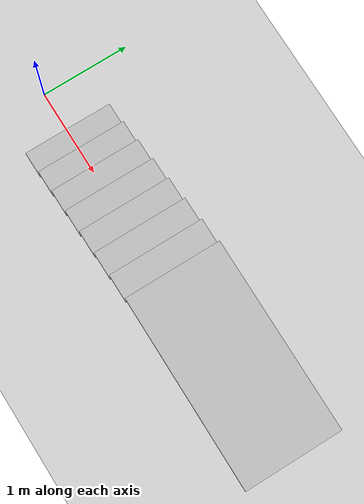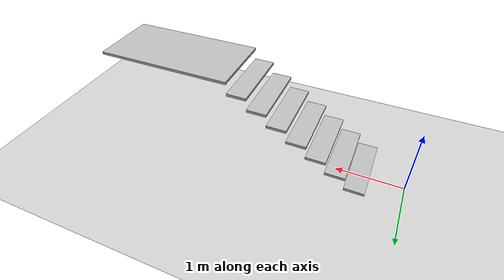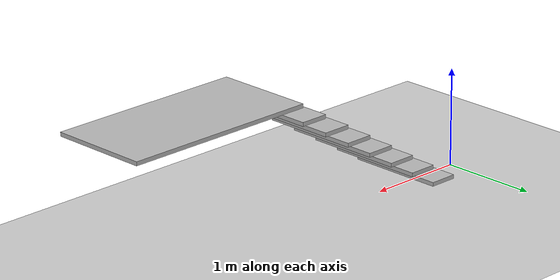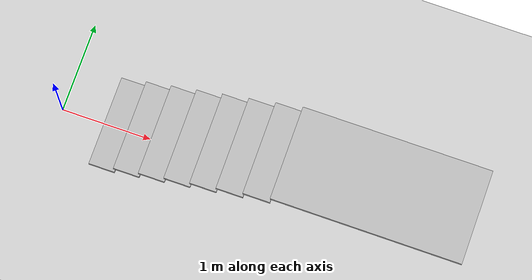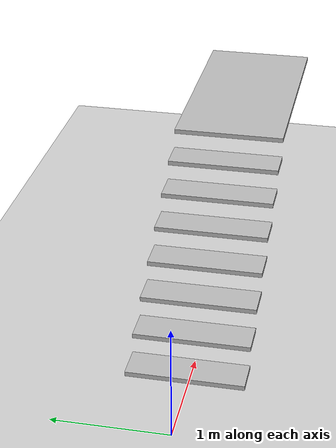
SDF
<?xml version="1.0" ?>
<sdf version="1.4">
  <world name="default">
    <include>
      <uri>model://ground_plane</uri>
    </include>
    <include>
      <uri>model://sun</uri>
    </include>
    <include>
      <uri>model://gazebo_worlds/models/stairs</uri>
    </include>
    <physics type="ode">
      <gravity>0 0 -9.81</gravity>
    </physics>
  </world>
</sdf>

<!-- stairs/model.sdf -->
<sdf version='1.4'>
  <model name="stairs">
    <static>true</static>
    <pose>0.5 0 0 0 0 0</pose>

    <link name='stairs1'>
      <pose>0.145 0 0.16 0 0 0</pose>

      <collision name='collision'>
        <geometry>
          <box>
            <size>0.29 1.0 0.04</size>
          </box>
        </geometry>
      </collision>

      <visual name='visual'>
        <geometry>
          <box>
            <size>0.29 1.0 0.04</size>
          </box>
        </geometry>
      </visual>
    </link>

    <link name='stairs2'>
      <pose>0.435 0 0.34 0 0 0</pose>

      <collision name='collision'>
        <geometry>
          <box>
            <size>0.29 1.0 0.04</size>
          </box>
        </geometry>
      </collision>

      <visual name='visual'>
        <geometry>
          <box>
            <size>0.29 1.0 0.04</size>
          </box>
        </geometry>
      </visual>
    </link>

    <link name='stairs3'>
      <pose>0.725 0 0.52 0 0 0</pose>

      <collision name='collision'>
        <geometry>
          <box>
            <size>0.29 1.0 0.04</size>
          </box>
        </geometry>
      </collision>

      <visual name='visual'>
        <geometry>
          <box>
            <size>0.29 1.0 0.04</size>
          </box>
        </geometry>
      </visual>
    </link>

    <link name='stairs4'>
      <pose>1.015 0 0.7 0 0 0</pose>

      <collision name='collision'>
        <geometry>
          <box>
            <size>0.29 1.0 0.04</size>
          </box>
        </geometry>
      </collision>

      <visual name='visual'>
        <geometry>
          <box>
            <size>0.29 1.0 0.04</size>
          </box>
        </geometry>
      </visual>
    </link>

    <link name='stairs5'>
      <pose>1.305 0 0.88 0 0 0</pose>

      <collision name='collision'>
        <geometry>
          <box>
            <size>0.29 1.0 0.04</size>
          </box>
        </geometry>
      </collision>

      <visual name='visual'>
        <geometry>
          <box>
            <size>0.29 1.0 0.04</size>
          </box>
        </geometry>
      </visual>
    </link>

    <link name='stairs6'>
      <pose>1.595 0 1.06 0 0 0</pose>

      <collision name='collision'>
        <geometry>
          <box>
            <size>0.29 1.0 0.04</size>
          </box>
        </geometry>
      </collision>

      <visual name='visual'>
        <geometry>
          <box>
            <size>0.29 1.0 0.04</size>
          </box>
        </geometry>
      </visual>
    </link>

    <link name='stairs7'>
      <pose>1.885 0 1.24 0 0 0</pose>

      <collision name='collision'>
        <geometry>
          <box>
            <size>0.29 1.0 0.04</size>
          </box>
        </geometry>
      </collision>

      <visual name='visual'>
        <geometry>
          <box>
            <size>0.29 1.0 0.04</size>
          </box>
        </geometry>
      </visual>
    </link>

    <link name='top'>
      <pose>3.03 0 1.42 0 0 0</pose>

      <collision name='collision'>
        <geometry>
          <box>
            <size>2.0 1.0 0.04</size>
          </box>
        </geometry>
      </collision>

      <visual name='visual'>
        <geometry>
          <box>
            <size>2.0 1.0 0.04</size>
          </box>
        </geometry>
      </visual>
    </link>
  </model>
</sdf>
